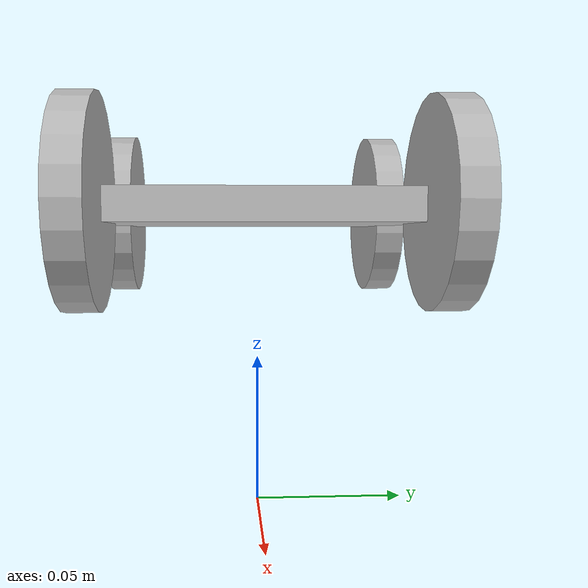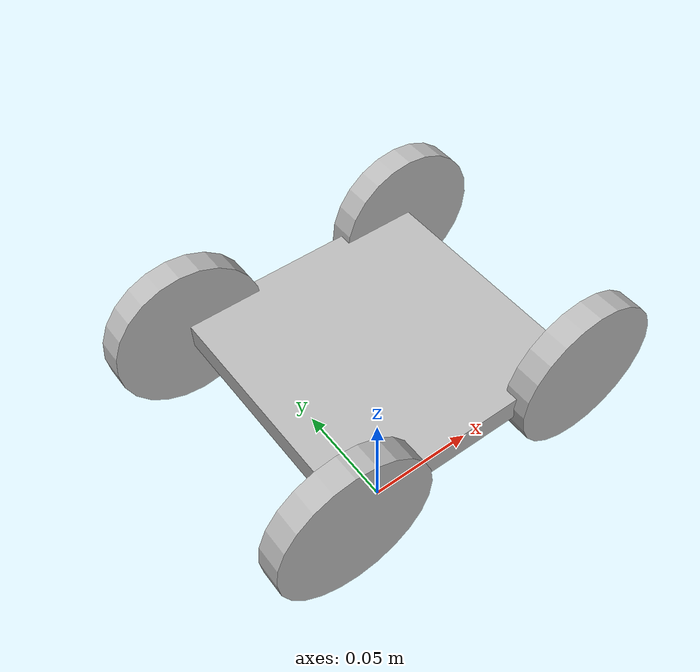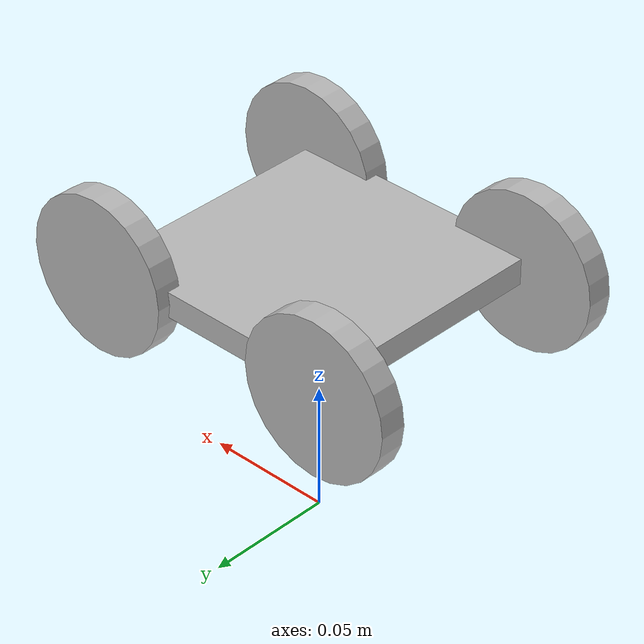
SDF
<?xml version='1.0'?>
    <sdf version='1.4'>
      <model name="super">
  <plugin name='differential_drive_controller'
  filename='libgazebo_ros_diff_drive.so'>
  <alwaysOn>true</alwaysOn>
  <updateRate>50</updateRate>
  <leftJoint>left_wheel_hinge</leftJoint>
  <rightJoint>right_wheel_hinge</rightJoint>
  <wheelSeparation>0.5</wheelSeparation>
  <wheelDiameter>0.1</wheelDiameter>
  <torque>1</torque>
  <commandTopic>cmd_vel</commandTopic>
   <odometryTopic>odometry</odometryTopic>
   <odometryFrame>odom</odometryFrame>
  <robotBaseFrame>base_link</robotBaseFrame>
  </plugin>
  <plugin name="gazebo_ros_gps" filename="libhector_gazebo_ros_gps.so"></plugin>
  <plugin name="imu_controller" filename="libhector_gazebo_ros_imu.so"></plugin>
        <static>false</static>

        <link name='base_link'>
          <pose>0 0 .1 0 0 0</pose>
          <collision name='collision'>
            <geometry>
              <box>
                <size>.1 .1 .01</size>
              </box>
            </geometry>
          </collision>

          <visual name='visual'>
            <geometry>
              <box>
                <size>.1 .1 .01</size>
              </box>
            </geometry>
          </visual>

      </link>
      <link name="left_wheel">
        <pose>0.05 .05 0.1 0 1.5707 1.5707</pose>
        <collision name="collision">
          <geometry>
            <cylinder>
              <radius>.03</radius>
              <length>.01</length>
            </cylinder>
          </geometry>
        </collision>
        <visual name="visual">
          <geometry>
            <cylinder>
              <radius>.03</radius>
              <length>.01</length>
            </cylinder>
          </geometry>
        </visual>
      </link>

      <link name="left_wheel_front">
        <pose>-.05 .05 0.1 0 1.5707 1.5707</pose>
        <collision name="collision">
          <geometry>
            <cylinder>
              <radius>.03</radius>
              <length>.01</length>
            </cylinder>
          </geometry>
        </collision>
        <visual name="visual">
          <geometry>
            <cylinder>
              <radius>.03</radius>
              <length>.01</length>
            </cylinder>
          </geometry>
        </visual>
</link>

      <link name="right_wheel_front">
        <pose>-.05 -.05 0.1 0 1.5707 1.5707</pose>
        <collision name="collision">
          <geometry>
            <cylinder>
              <radius>.03</radius>
              <length>.01</length>
            </cylinder>
          </geometry>
        </collision>
        <visual name="visual">
          <geometry>
            <cylinder>
              <radius>.03</radius>
              <length>.01</length>
            </cylinder>
          </geometry>
        </visual>
      </link>
      <link name="right_wheel">
        <pose>0.05 -.05 0.1 0 1.5707 1.5707</pose>
        <collision name="collision">
          <geometry>
            <cylinder>
              <radius>.03</radius>
              <length>.01</length>
            </cylinder>
          </geometry>
        </collision>
        <visual name="visual">
          <geometry>
            <cylinder>
              <radius>.03</radius>
              <length>.01</length>
            </cylinder>
          </geometry>
        </visual>
      </link>

      <joint type="revolute" name="left_wheel_hinge">
        <pose>0 0 -0.03 0 0 0</pose>
        <child>left_wheel</child>
        <parent>base_link</parent>
        <axis>
          <xyz>0 1 0</xyz>
        </axis>
      </joint>

      <joint type="revolute" name="left_wheel_front_hinge">
        <pose>0 0 -0.03 0 0 0</pose>
        <child>left_wheel_front</child>
        <parent>base_link</parent>
        <axis>
          <xyz>0 1 0</xyz>
        </axis>
      </joint>

      <joint type="revolute" name="right_wheel_hinge">
        <pose>0 0 0.03 0 0 0</pose>
        <child>right_wheel</child>
        <parent>base_link</parent>
        <axis>
          <xyz>0 1 0</xyz>
        </axis>
      </joint>

      <joint type="revolute" name="right_wheel_front_hinge">
        <pose>0 0 0.03 0 0 0</pose>
        <child>right_wheel_front</child>
        <parent>base_link</parent>
        <axis>
          <xyz>0 1 0</xyz>
        </axis>
      </joint>
     <sonar><parent>base_link</parent> </sonar>
      </model>
    </sdf>
